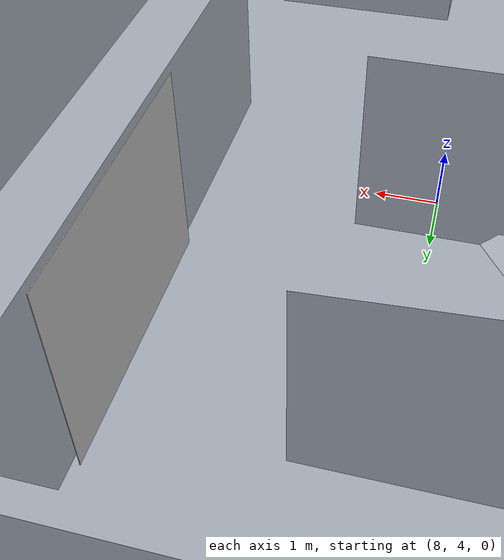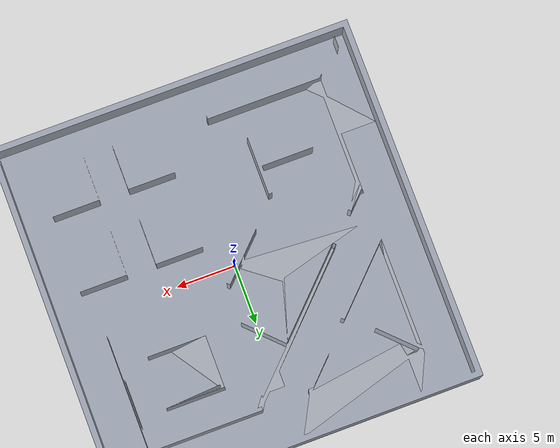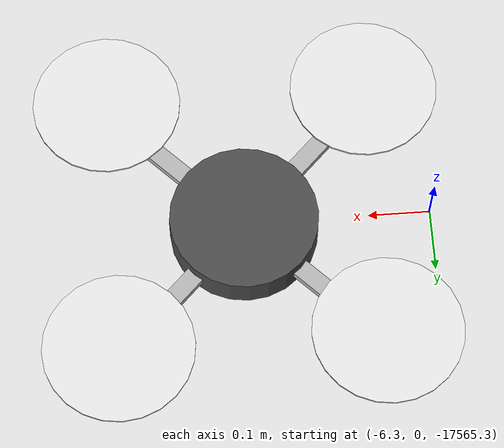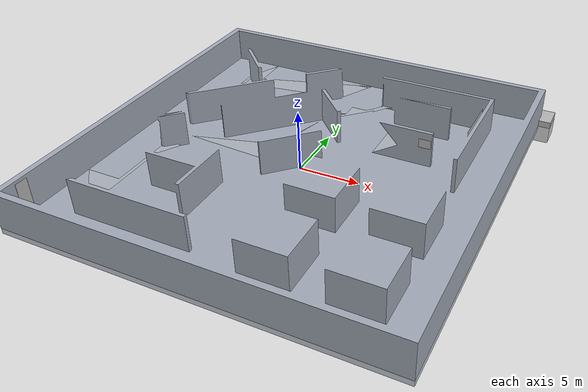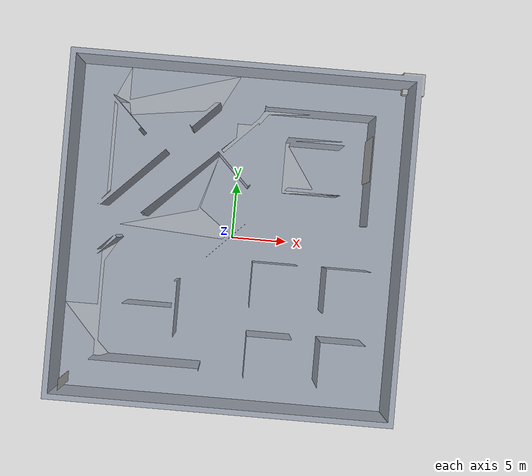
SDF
<sdf version="1.7">
 <world name="default">
  <light name="sun" type="directional">
   <pose>0 0 10 0 -0 0</pose>
   <diffuse>0.8 0.8 0.8 1</diffuse>
   <specular>0.2 0.2 0.2 1</specular>
   <attenuation>
    <range>1000</range>
    <constant>0.9</constant>
    <linear>0.01</linear>
    <quadratic>0.001</quadratic>
   </attenuation>
   <direction>-0.5 0.1 -0.9</direction>
   <spot><inner_angle>0</inner_angle><outer_angle>0</outer_angle><falloff>0</falloff></spot>
  </light>
  <model name="ground_plane">
   <static>1</static>
   <link name="link">
    <collision name="collision">
     <geometry><plane><normal>0 0 1</normal><size>100 100</size></plane></geometry>
     <surface>
      <contact><collide_bitmask>65535</collide_bitmask></contact>
      <friction><ode><mu>100</mu><mu2>50</mu2></ode></friction>
     </surface>
    </collision>
    <visual name="visual">
     <cast_shadows>0</cast_shadows>
     <geometry><plane><normal>0 0 1</normal><size>100 100</size></plane></geometry>
     <material>
      <script><uri>file://media/materials/scripts/gazebo.material</uri><name>Gazebo/Grey</name></script>
     </material>
    </visual>
   </link>
  </model>
  <model name="complex_office_map">
   <static>1</static>
   <pose>15.5 15.5 -0.5 0 0 -1.5708</pose>
   <link name="map_link">
    <visual name="map_visual">
     <geometry>
      <mesh>
       <uri>file:///root/catkin_ws/src/FALCON/uav_simulator/map_render/resource/untitled_v1.dae</uri>
       <scale>1 1 1</scale>
      </mesh>
     </geometry>
    </visual>
   </link>
  </model>
  <model name="gz_uav">
   <static>0</static>
   <link name="base_link">
    <visual name="base_vis">
     <geometry><cylinder><radius>0.12</radius><length>0.06</length></cylinder></geometry>
     <material><script><name>Gazebo/DarkGrey</name><uri>__default__</uri></script></material>
    </visual>
    <visual name="arms_vis">
     <geometry><box><size>0.6 0.03 0.015</size></box></geometry>
     <pose>0 0 0 0 -0 0.785</pose>
    </visual>
    <visual name="arms_vis_2">
     <geometry><box><size>0.6 0.03 0.015</size></box></geometry>
     <pose>0 0 0 0 0 -0.785</pose>
    </visual>
    <visual name="motor_1">
     <pose>0.21 0.21 0.02 0 -0 0</pose>
     <geometry><cylinder><radius>0.03</radius><length>0.04</length></cylinder></geometry>
     <material><script><name>Gazebo/Black</name><uri>__default__</uri></script></material>
    </visual>
    <visual name="motor_2">
     <pose>-0.21 0.21 0.02 0 -0 0</pose>
     <geometry><cylinder><radius>0.03</radius><length>0.04</length></cylinder></geometry>
     <material><script><name>Gazebo/Black</name><uri>__default__</uri></script></material>
    </visual>
    <visual name="motor_3">
     <pose>0.21 -0.21 0.02 0 -0 0</pose>
     <geometry><cylinder><radius>0.03</radius><length>0.04</length></cylinder></geometry>
     <material><script><name>Gazebo/Black</name><uri>__default__</uri></script></material>
    </visual>
    <visual name="motor_4">
     <pose>-0.21 -0.21 0.02 0 -0 0</pose>
     <geometry><cylinder><radius>0.03</radius><length>0.04</length></cylinder></geometry>
     <material><script><name>Gazebo/Black</name><uri>__default__</uri></script></material>
    </visual>
    <visual name="prop_1">
     <pose>0.21 0.21 0.04 0 -0 0</pose>
     <geometry><cylinder><radius>0.12</radius><length>0.005</length></cylinder></geometry>
     <material><script><name>Gazebo/White</name><uri>__default__</uri></script></material>
    </visual>
    <visual name="prop_2">
     <pose>-0.21 0.21 0.04 0 -0 0</pose>
     <geometry><cylinder><radius>0.12</radius><length>0.005</length></cylinder></geometry>
     <material><script><name>Gazebo/White</name><uri>__default__</uri></script></material>
    </visual>
    <visual name="prop_3">
     <pose>0.21 -0.21 0.04 0 -0 0</pose>
     <geometry><cylinder><radius>0.12</radius><length>0.005</length></cylinder></geometry>
     <material><script><name>Gazebo/White</name><uri>__default__</uri></script></material>
    </visual>
    <visual name="prop_4">
     <pose>-0.21 -0.21 0.04 0 -0 0</pose>
     <geometry><cylinder><radius>0.12</radius><length>0.005</length></cylinder></geometry>
     <material><script><name>Gazebo/White</name><uri>__default__</uri></script></material>
    </visual>
    <sensor name="rgb_camera" type="camera">
     <always_on>1</always_on>
     <update_rate>15</update_rate>
     <camera>
      <horizontal_fov>1.047</horizontal_fov>
      <image><width>640</width><height>480</height><format>R8G8B8</format></image>
      <clip><near>0.05</near><far>50</far></clip>
     </camera>
     <plugin name="gazebo_ros_camera" filename="libgazebo_ros_camera.so">
      <cameraName>camera</cameraName>
      <frameName>camera_link</frameName>
      <imageTopicName>image_raw</imageTopicName>
      <cameraInfoTopicName>camera_info</cameraInfoTopicName>
     </plugin>
    </sensor>
    <inertial>
     <inertia><ixx>1</ixx><ixy>0</ixy><ixz>0</ixz><iyy>1</iyy><iyz>0</iyz><izz>1</izz></inertia>
     <mass>1</mass>
    </inertial>
   </link>
   <pose>-6 0 -17565.3 0 -0 0</pose>
  </model>
  <model name="poster1">
   <static>1</static>
   <link name="poster_link">
    <visual name="poster_visual">
     <geometry><box><size>0.01 4 3</size></box></geometry>
     <material>
      <script>
       <uri>file:///root/catkin_ws/src/gazebo/poster_plane/materials/scripts</uri>
       <uri>file:///root/catkin_ws/src/gazebo/poster_plane/materials/textures</uri>
       <name>Poster/Poster</name>
      </script>
     </material>
    </visual>
   </link>
   <pose>11.5704 7.9 1.55385 0 -0 0</pose>
  </model>
  <model name="poster2">
   <static>1</static>
   <link name="poster_link">
    <visual name="poster_visual">
     <geometry><box><size>0.01 1 0.75</size></box></geometry>
     <material>
      <script>
       <uri>file:///root/catkin_ws/src/gazebo/poster_plane 1/materials/scripts</uri>
       <uri>file:///root/catkin_ws/src/gazebo/poster_plane 1/materials/textures</uri>
       <name>Poster/Poster1</name>
      </script>
     </material>
    </visual>
   </link>
   <pose>8.61662 4.49831 2 0 -0 1.57</pose>
  </model>
  <model name="poster4">
   <static>1</static>
   <link name="poster_link">
    <visual name="poster_visual">
     <geometry><box><size>0.01 1 3</size></box></geometry>
     <material>
      <script>
       <uri>file:///root/catkin_ws/src/gazebo/poster_plane 3/materials/scripts</uri>
       <uri>file:///root/catkin_ws/src/gazebo/poster_plane 3/materials/textures</uri>
       <name>Poster/Poster4</name>
      </script>
     </material>
    </visual>
   </link>
   <pose>-14 -14 2 0 -0 0</pose>
  </model>
  <gravity>0 0 -9.8</gravity>
  <magnetic_field>6e-06 2.3e-05 -4.2e-05</magnetic_field>
  <atmosphere type="adiabatic"/>
  <physics type="ode">
   <max_step_size>0.001</max_step_size>
   <real_time_factor>1</real_time_factor>
   <real_time_update_rate>1000</real_time_update_rate>
  </physics>
  <scene><ambient>0.4 0.4 0.4 1</ambient><background>0.7 0.7 0.7 1</background><shadows>1</shadows></scene>
  <spherical_coordinates>
   <surface_model>EARTH_WGS84</surface_model>
   <latitude_deg>0</latitude_deg>
   <longitude_deg>0</longitude_deg>
   <elevation>0</elevation>
   <heading_deg>0</heading_deg>
  </spherical_coordinates>
 </world>
</sdf>
